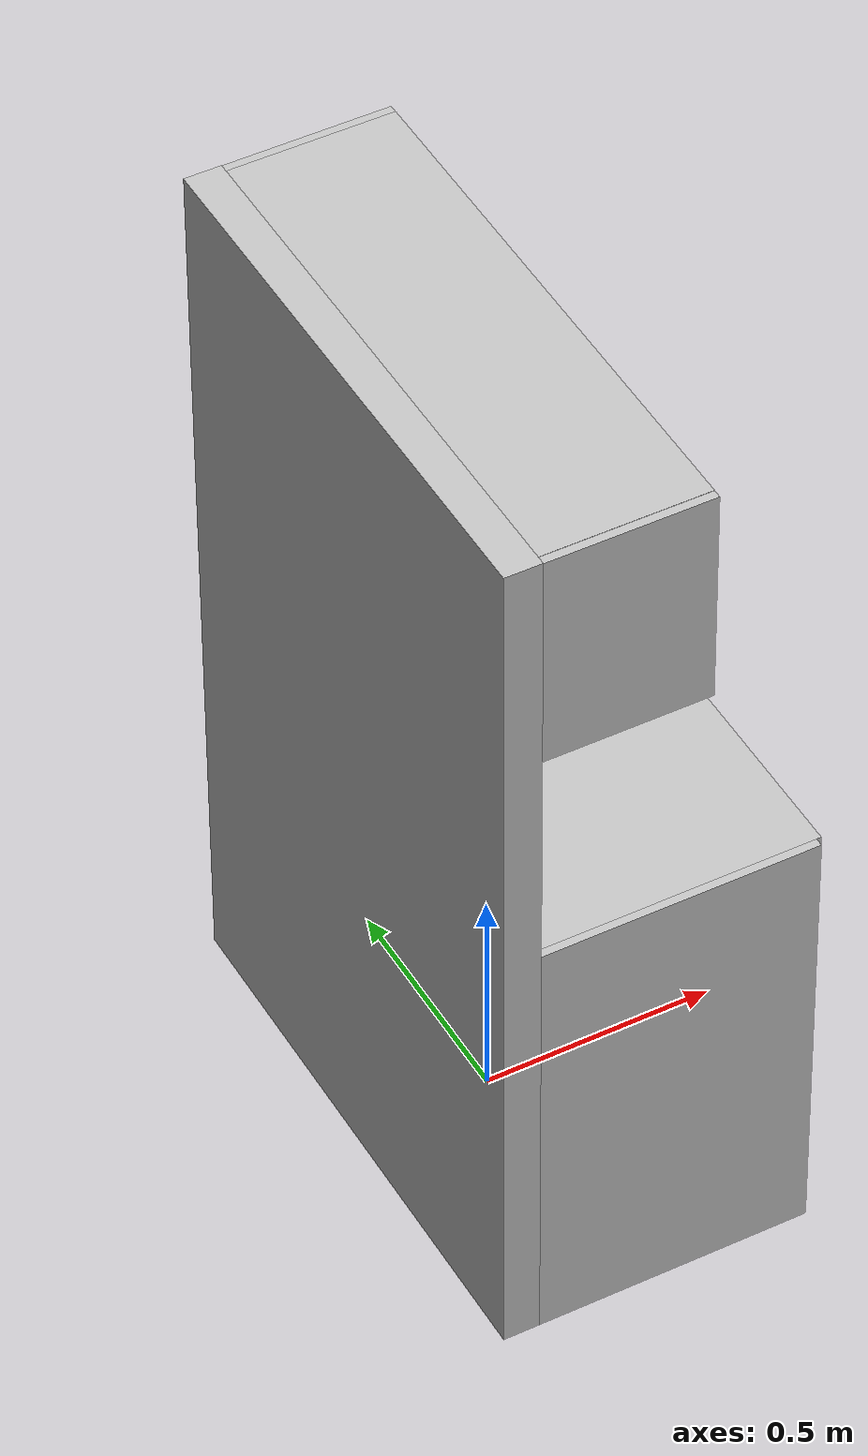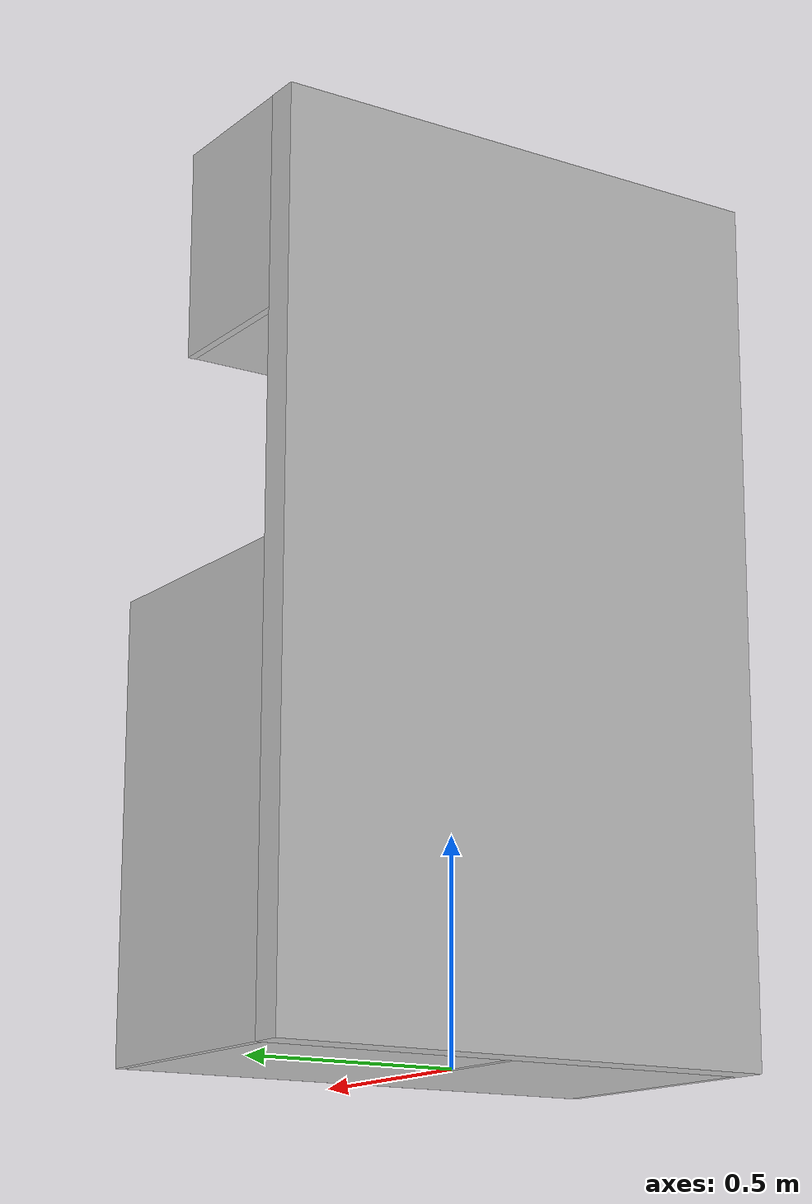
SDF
<?xml version="1.0"?>
<sdf version="1.6">
  <model name="rgo2019/kitchen_counter">
    <link name="1_link">
      <collision name="1_col">
        <geometry>
          <box>
            <size>0.59 0.018 1.02</size>
          </box>
        </geometry>
      </collision>
      <visual name="1_vis">
        <geometry>
          <box>
            <size>0.59 0.018 1.02</size>
          </box>
        </geometry>
        <material>
          <ambient>0.75 0.75 0.75 1</ambient>
        </material>
      </visual>
      <pose>0.078 -0.5935 0.51 0 0 0</pose>
    </link>
    <link name="2_link">
      <collision name="2_col">
        <geometry>
          <box>
            <size>0.59 0.018 1.02</size>
          </box>
        </geometry>
      </collision>
      <visual name="2_vis">
        <geometry>
          <box>
            <size>0.59 0.018 1.02</size>
          </box>
        </geometry>
        <material>
          <ambient>0.75 0.75 0.75 1</ambient>
        </material>
      </visual>
      <pose>0.078 0.5935 0.51 0 0 0</pose>
    </link>
    <link name="3_link">
      <collision name="3_col">
        <geometry>
          <box>
            <size>0.078 1.205 2.002</size>
          </box>
        </geometry>
      </collision>
      <visual name="3_vis">
        <geometry>
          <box>
            <size>0.078 1.205 2.002</size>
          </box>
        </geometry>
        <material>
          <ambient>0.75 0.75 0.75 1</ambient>
        </material>
      </visual>
      <pose>-0.256 0 1.001 0 0 0</pose>
    </link>
    <link name="4_link">
      <collision name="4_col">
        <geometry>
          <box>
            <size>0.6 1.169 0.038</size>
          </box>
        </geometry>
      </collision>
      <visual name="4_vis">
        <geometry>
          <box>
            <size>0.6 1.169 0.038</size>
          </box>
        </geometry>
        <material>
          <ambient>0.75 0.75 0.75 1</ambient>
        </material>
      </visual>
      <pose>0.083 0 1.001 0 0 0</pose>
    </link>
    <link name="5_link">
      <collision name="5_col">
        <geometry>
          <box>
            <size>0.59 1.169 0.138</size>
          </box>
        </geometry>
      </collision>
      <visual name="5_vis">
        <geometry>
          <box>
            <size>0.59 1.169 0.138</size>
          </box>
        </geometry>
        <material>
          <ambient>0.75 0.75 0.75 1</ambient>
        </material>
      </visual>
      <pose>0.078 0 0.069 0 0 0</pose>
    </link>
    <link name="6_link">
      <collision name="6_col">
        <geometry>
          <box>
            <size>0.572 1.169 0.018</size>
          </box>
        </geometry>
      </collision>
      <visual name="6_vis">
        <geometry>
          <box>
            <size>0.572 1.169 0.018</size>
          </box>
        </geometry>
        <material>
          <ambient>0.75 0.75 0.75 1</ambient>
        </material>
      </visual>
      <pose>0.069 0 0.544 0 0 0</pose>
    </link>
    <link name="7_link">
      <collision name="7_col">
        <geometry>
          <box>
            <size>0.572 0.018 1.0</size>
          </box>
        </geometry>
      </collision>
      <visual name="7_vis">
        <geometry>
          <box>
            <size>0.572 0.018 1.0</size>
          </box>
        </geometry>
        <material>
          <ambient>0.75 0.75 0.75 1</ambient>
        </material>
      </visual>
      <pose>0.069 0 0.5 0 0 0</pose>
    </link>
    <link name="8_link">
      <collision name="8_col">
        <geometry>
          <box>
            <size>0.35 0.018 0.482</size>
          </box>
        </geometry>
      </collision>
      <visual name="8_vis">
        <geometry>
          <box>
            <size>0.35 0.018 0.482</size>
          </box>
        </geometry>
        <material>
          <ambient>0.75 0.75 0.75 1</ambient>
        </material>
      </visual>
      <pose>-0.042 -0.5935 1.76 0 0 0</pose>
    </link>
    <link name="9_link">
      <collision name="9_col">
        <geometry>
          <box>
            <size>0.35 0.018 0.482</size>
          </box>
        </geometry>
      </collision>
      <visual name="9_vis">
        <geometry>
          <box>
            <size>0.35 0.018 0.482</size>
          </box>
        </geometry>
        <material>
          <ambient>0.75 0.75 0.75 1</ambient>
        </material>
      </visual>
      <pose>-0.042 0.5935 1.76 0 0 0</pose>
    </link>
    <link name="10_link">
      <collision name="10_col">
        <geometry>
          <box>
            <size>0.35 1.169 0.018</size>
          </box>
        </geometry>
      </collision>
      <visual name="10_vis">
        <geometry>
          <box>
            <size>0.35 1.169 0.018</size>
          </box>
        </geometry>
        <material>
          <ambient>0.75 0.75 0.75 1</ambient>
        </material>
      </visual>
      <pose>-0.042 0 1.993 0 0 0</pose>
    </link>
    <link name="11_link">
      <collision name="11_col">
        <geometry>
          <box>
            <size>0.35 1.169 0.018</size>
          </box>
        </geometry>
      </collision>
      <visual name="11_vis">
        <geometry>
          <box>
            <size>0.35 1.169 0.018</size>
          </box>
        </geometry>
        <material>
          <ambient>0.75 0.75 0.75 1</ambient>
        </material>
      </visual>
      <pose>-0.042 0 1.529 0 0 0</pose>
    </link>
    <link name="12_link">
      <collision name="12_col">
        <geometry>
          <box>
            <size>0.35 1.169 0.018</size>
          </box>
        </geometry>
      </collision>
      <visual name="12_vis">
        <geometry>
          <box>
            <size>0.35 1.169 0.018</size>
          </box>
        </geometry>
        <material>
          <ambient>0.75 0.75 0.75 1</ambient>
        </material>
      </visual>
      <pose>-0.042 0 1.754 0 0 0</pose>
    </link>
    <link name="13_link">
      <collision name="13_col">
        <geometry>
          <box>
            <size>0.35 0.036 0.482</size>
          </box>
        </geometry>
      </collision>
      <visual name="13_vis">
        <geometry>
          <box>
            <size>0.35 0.036 0.482</size>
          </box>
        </geometry>
        <material>
          <ambient>0.75 0.75 0.75 1</ambient>
        </material>
      </visual>
      <pose>-0.042 0 1.76 0 0 0</pose>
    </link>
    <link name="14_link">
      <collision name="14_col">
        <geometry>
          <box>
            <size>0.018 1.2 1.0</size>
          </box>
        </geometry>
      </collision>
      <visual name="14_vis">
        <geometry>
          <box>
            <size>0.018 1.2 1.0</size>
          </box>
        </geometry>
        <material>
          <ambient>0.75 0.75 0.75 1</ambient>
        </material>
      </visual>
      <pose>0.365 0.0 0.50 0 0 0</pose>
    </link>
    <link name="in_front_of">
      <virtual_volume name="in_front_of_vv">
        <geometry>
          <box>
            <size>0.2 1.005 0.01</size>
          </box>
        </geometry>
        <pose>1.3 0.0 0.005 0 0 0</pose>
      </virtual_volume>
    </link>
    <link name="on_top_of">
      <virtual_volume name="on_top_of_vv">
        <geometry>
          <box>
            <size>0.53 1.14 0.3</size>
          </box>
        </geometry>
        <pose>0.078 0.0 1.19 0 0 0</pose>
      </virtual_volume>
    </link>
    <static>true</static>
  </model>
</sdf>
